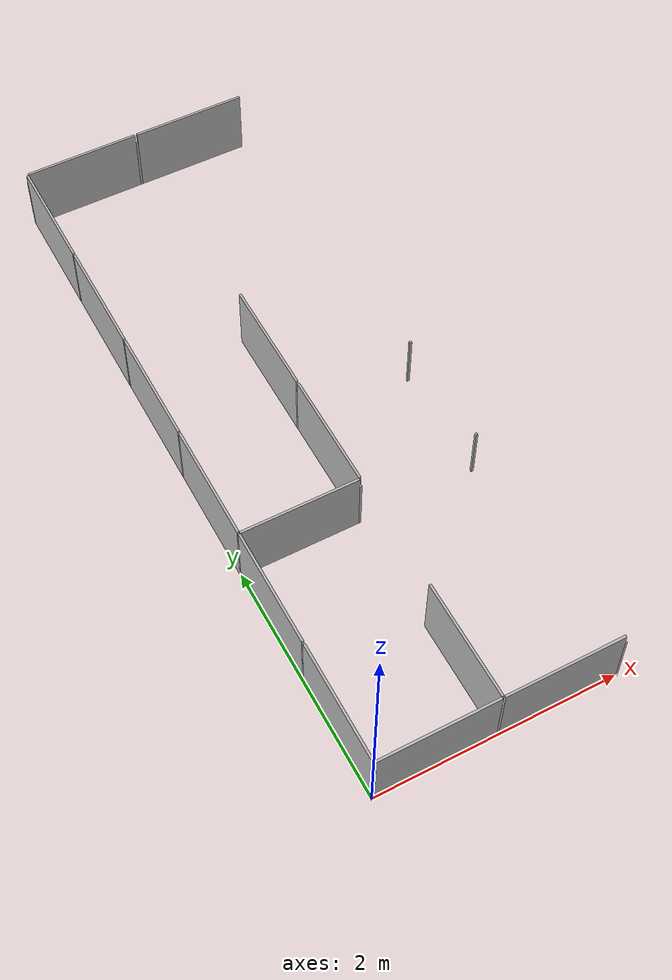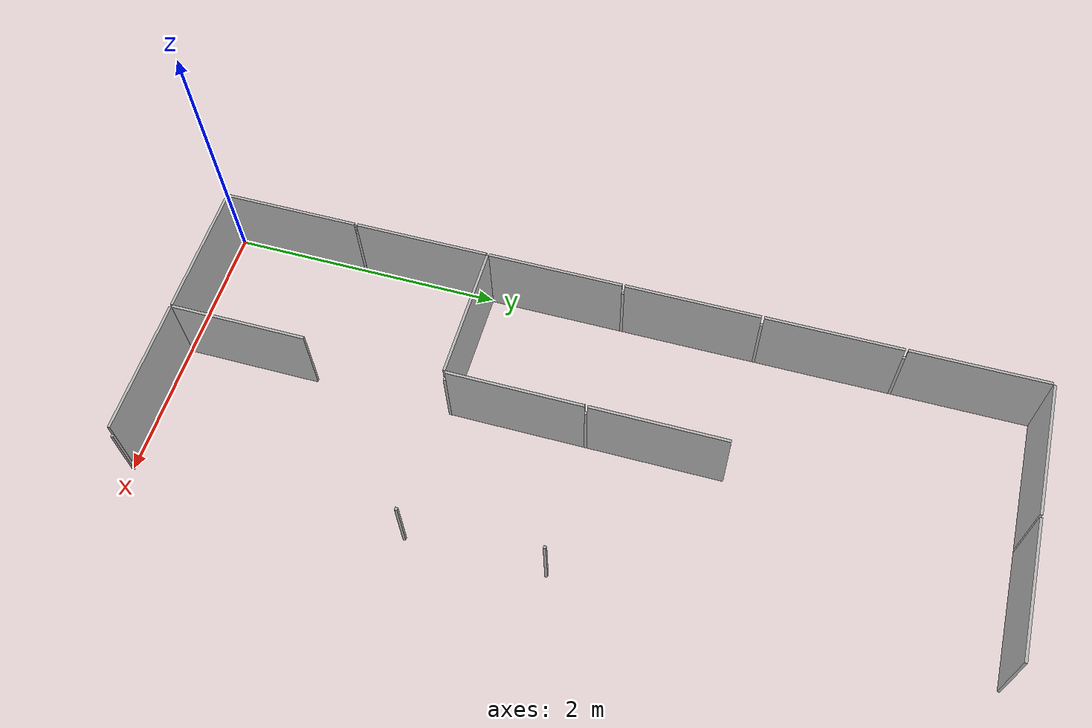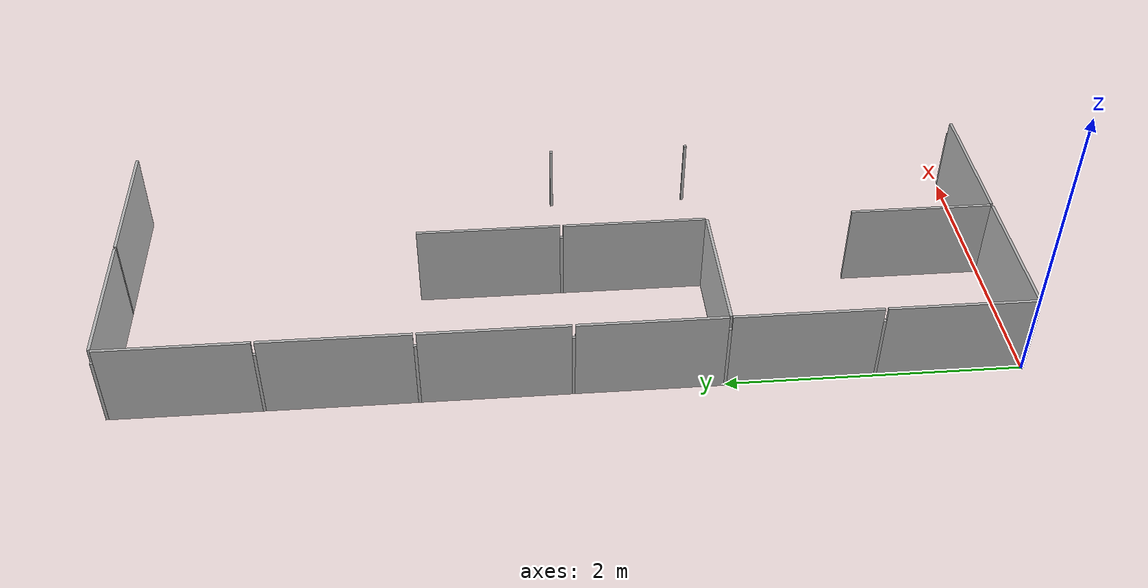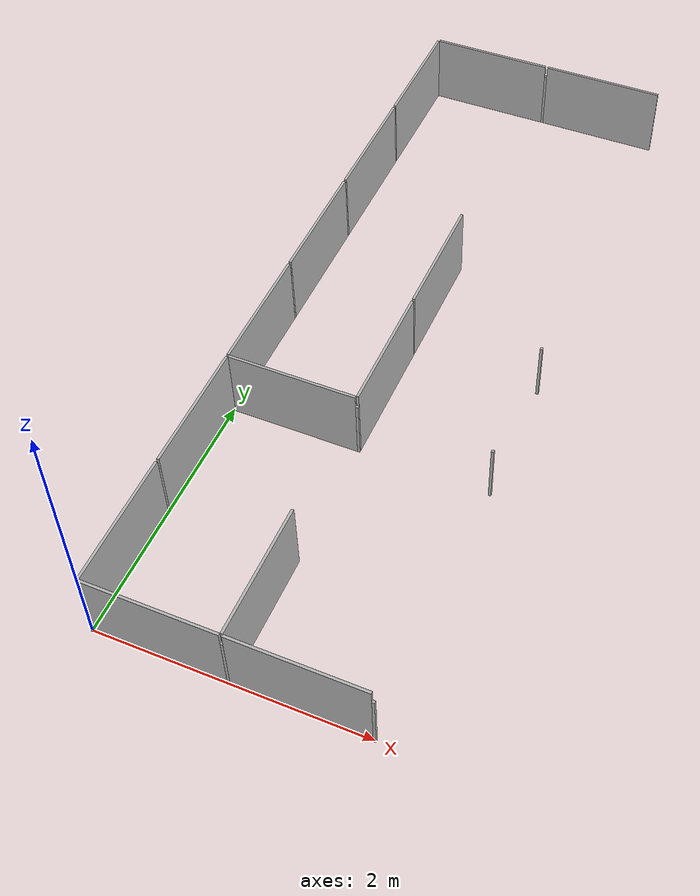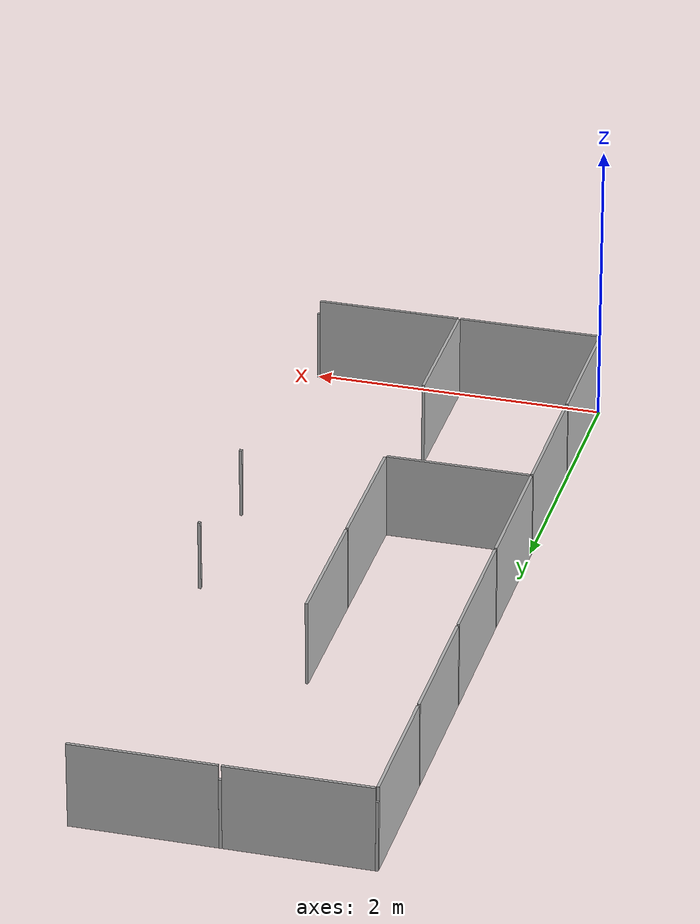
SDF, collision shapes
<sdf version="1.7">
 <model name="maze_midterm_validation">
  <link name="metal_plate_0_0_b::main">
   <pose>0 0 0 0 -0 1.571</pose>
   <visual name="visual">
    <pose>0.01 -0.01 0 3.14159 -1.57059 3.14159</pose>
    <geometry><mesh><scale>1 1 1</scale><uri>model://metal_plate/meshes/metal_plate.dae</uri></mesh></geometry>
    <material><shader type="pixel"/></material>
   </visual>
   <collision name="collision">
    <pose>0 -0.5 0.3 -1.571 -0 -1.571</pose>
    <geometry><box><size>0.98 0.6 0.02</size></box></geometry>
    <surface>
     <friction>
      <ode><mu>1</mu><mu2>1</mu2><fdir1>0 0 0</fdir1><slip1>0</slip1><slip2>0</slip2></ode>
      <torsional>
       <coefficient>1</coefficient>
       <patch_radius>0</patch_radius>
       <surface_radius>0</surface_radius>
       <use_patch_radius>1</use_patch_radius>
       <ode><slip>0</slip></ode>
      </torsional>
     </friction>
     <bounce><restitution_coefficient>0</restitution_coefficient><threshold>1e+06</threshold></bounce>
     <contact>
      <collide_without_contact>0</collide_without_contact>
      <collide_without_contact_bitmask>1</collide_without_contact_bitmask>
      <collide_bitmask>1</collide_bitmask>
      <ode>
       <soft_cfm>0</soft_cfm>
       <soft_erp>0.2</soft_erp>
       <kp>1e+13</kp>
       <kd>1</kd>
       <max_vel>0.01</max_vel>
       <min_depth>0</min_depth>
      </ode>
      <bullet>
       <split_impulse>1</split_impulse>
       <split_impulse_penetration_threshold>-0.01</split_impulse_penetration_threshold>
       <soft_cfm>0</soft_cfm>
       <soft_erp>0.2</soft_erp>
       <kp>1e+13</kp>
       <kd>1</kd>
      </bullet>
     </contact>
    </surface>
   </collision>
  </link>
  <link name="metal_joint_0_0_b::link">
   <pose>0 0 0.25 0 -0 0</pose>
   <visual name="visual_metal_joint_0">
    <geometry><box><size>0.02 0.02 0.5</size></box></geometry>
    <material>
     <script>
      <uri>model://metal_joint/materials/scripts</uri>
      <uri>model://metal_joint/materials/textures</uri>
      <name>metal_joint</name>
     </script>
     <shader type="pixel"/>
    </material>
   </visual>
   <collision name="metal_joint_01">
    <geometry><box><size>0.02 0.02 0.5</size></box></geometry>
    <surface>
     <friction>
      <ode><mu>1</mu><mu2>1</mu2><fdir1>0 0 0</fdir1><slip1>0</slip1><slip2>0</slip2></ode>
      <torsional>
       <coefficient>1</coefficient>
       <patch_radius>0</patch_radius>
       <surface_radius>0</surface_radius>
       <use_patch_radius>1</use_patch_radius>
       <ode><slip>0</slip></ode>
      </torsional>
     </friction>
     <bounce><restitution_coefficient>0</restitution_coefficient><threshold>1e+06</threshold></bounce>
     <contact>
      <collide_without_contact>0</collide_without_contact>
      <collide_without_contact_bitmask>1</collide_without_contact_bitmask>
      <collide_bitmask>1</collide_bitmask>
      <ode>
       <soft_cfm>0</soft_cfm>
       <soft_erp>0.2</soft_erp>
       <kp>1e+13</kp>
       <kd>1</kd>
       <max_vel>0.01</max_vel>
       <min_depth>0</min_depth>
      </ode>
      <bullet>
       <split_impulse>1</split_impulse>
       <split_impulse_penetration_threshold>-0.01</split_impulse_penetration_threshold>
       <soft_cfm>0</soft_cfm>
       <soft_erp>0.2</soft_erp>
       <kp>1e+13</kp>
       <kd>1</kd>
      </bullet>
     </contact>
    </surface>
   </collision>
  </link>
  <link name="metal_joint_0_1_a::link">
   <pose>0 1 0.25 0 -0 0</pose>
   <visual name="visual_metal_joint_0">
    <geometry><box><size>0.02 0.02 0.5</size></box></geometry>
    <material>
     <script>
      <uri>model://metal_joint/materials/scripts</uri>
      <uri>model://metal_joint/materials/textures</uri>
      <name>metal_joint</name>
     </script>
     <shader type="pixel"/>
    </material>
   </visual>
   <collision name="metal_joint_01">
    <geometry><box><size>0.02 0.02 0.5</size></box></geometry>
    <surface>
     <friction>
      <ode><mu>1</mu><mu2>1</mu2><fdir1>0 0 0</fdir1><slip1>0</slip1><slip2>0</slip2></ode>
      <torsional>
       <coefficient>1</coefficient>
       <patch_radius>0</patch_radius>
       <surface_radius>0</surface_radius>
       <use_patch_radius>1</use_patch_radius>
       <ode><slip>0</slip></ode>
      </torsional>
     </friction>
     <bounce><restitution_coefficient>0</restitution_coefficient><threshold>1e+06</threshold></bounce>
     <contact>
      <collide_without_contact>0</collide_without_contact>
      <collide_without_contact_bitmask>1</collide_without_contact_bitmask>
      <collide_bitmask>1</collide_bitmask>
      <ode>
       <soft_cfm>0</soft_cfm>
       <soft_erp>0.2</soft_erp>
       <kp>1e+13</kp>
       <kd>1</kd>
       <max_vel>0.01</max_vel>
       <min_depth>0</min_depth>
      </ode>
      <bullet>
       <split_impulse>1</split_impulse>
       <split_impulse_penetration_threshold>-0.01</split_impulse_penetration_threshold>
       <soft_cfm>0</soft_cfm>
       <soft_erp>0.2</soft_erp>
       <kp>1e+13</kp>
       <kd>1</kd>
      </bullet>
     </contact>
    </surface>
   </collision>
  </link>
  <link name="metal_joint_0_2_a::link">
   <pose>0 2 0.25 0 -0 0</pose>
   <visual name="visual_metal_joint_0">
    <geometry><box><size>0.02 0.02 0.5</size></box></geometry>
    <material>
     <script>
      <uri>model://metal_joint/materials/scripts</uri>
      <uri>model://metal_joint/materials/textures</uri>
      <name>metal_joint</name>
     </script>
     <shader type="pixel"/>
    </material>
   </visual>
   <collision name="metal_joint_01">
    <geometry><box><size>0.02 0.02 0.5</size></box></geometry>
    <surface>
     <friction>
      <ode><mu>1</mu><mu2>1</mu2><fdir1>0 0 0</fdir1><slip1>0</slip1><slip2>0</slip2></ode>
      <torsional>
       <coefficient>1</coefficient>
       <patch_radius>0</patch_radius>
       <surface_radius>0</surface_radius>
       <use_patch_radius>1</use_patch_radius>
       <ode><slip>0</slip></ode>
      </torsional>
     </friction>
     <bounce><restitution_coefficient>0</restitution_coefficient><threshold>1e+06</threshold></bounce>
     <contact>
      <collide_without_contact>0</collide_without_contact>
      <collide_without_contact_bitmask>1</collide_without_contact_bitmask>
      <collide_bitmask>1</collide_bitmask>
      <ode>
       <soft_cfm>0</soft_cfm>
       <soft_erp>0.2</soft_erp>
       <kp>1e+13</kp>
       <kd>1</kd>
       <max_vel>0.01</max_vel>
       <min_depth>0</min_depth>
      </ode>
      <bullet>
       <split_impulse>1</split_impulse>
       <split_impulse_penetration_threshold>-0.01</split_impulse_penetration_threshold>
       <soft_cfm>0</soft_cfm>
       <soft_erp>0.2</soft_erp>
       <kp>1e+13</kp>
       <kd>1</kd>
      </bullet>
     </contact>
    </surface>
   </collision>
  </link>
  <link name="metal_joint_0_3_a::link">
   <pose>0 3 0.25 0 -0 0</pose>
   <visual name="visual_metal_joint_0">
    <geometry><box><size>0.02 0.02 0.5</size></box></geometry>
    <material>
     <script>
      <uri>model://metal_joint/materials/scripts</uri>
      <uri>model://metal_joint/materials/textures</uri>
      <name>metal_joint</name>
     </script>
     <shader type="pixel"/>
    </material>
   </visual>
   <collision name="metal_joint_01">
    <geometry><box><size>0.02 0.02 0.5</size></box></geometry>
    <surface>
     <friction>
      <ode><mu>1</mu><mu2>1</mu2><fdir1>0 0 0</fdir1><slip1>0</slip1><slip2>0</slip2></ode>
      <torsional>
       <coefficient>1</coefficient>
       <patch_radius>0</patch_radius>
       <surface_radius>0</surface_radius>
       <use_patch_radius>1</use_patch_radius>
       <ode><slip>0</slip></ode>
      </torsional>
     </friction>
     <bounce><restitution_coefficient>0</restitution_coefficient><threshold>1e+06</threshold></bounce>
     <contact>
      <collide_without_contact>0</collide_without_contact>
      <collide_without_contact_bitmask>1</collide_without_contact_bitmask>
      <collide_bitmask>1</collide_bitmask>
      <ode>
       <soft_cfm>0</soft_cfm>
       <soft_erp>0.2</soft_erp>
       <kp>1e+13</kp>
       <kd>1</kd>
       <max_vel>0.01</max_vel>
       <min_depth>0</min_depth>
      </ode>
      <bullet>
       <split_impulse>1</split_impulse>
       <split_impulse_penetration_threshold>-0.01</split_impulse_penetration_threshold>
       <soft_cfm>0</soft_cfm>
       <soft_erp>0.2</soft_erp>
       <kp>1e+13</kp>
       <kd>1</kd>
      </bullet>
     </contact>
    </surface>
   </collision>
  </link>
  <link name="metal_joint_0_4_a::link">
   <pose>0 4 0.25 0 -0 0</pose>
   <visual name="visual_metal_joint_0">
    <geometry><box><size>0.02 0.02 0.5</size></box></geometry>
    <material>
     <script>
      <uri>model://metal_joint/materials/scripts</uri>
      <uri>model://metal_joint/materials/textures</uri>
      <name>metal_joint</name>
     </script>
     <shader type="pixel"/>
    </material>
   </visual>
   <collision name="metal_joint_01">
    <geometry><box><size>0.02 0.02 0.5</size></box></geometry>
    <surface>
     <friction>
      <ode><mu>1</mu><mu2>1</mu2><fdir1>0 0 0</fdir1><slip1>0</slip1><slip2>0</slip2></ode>
      <torsional>
       <coefficient>1</coefficient>
       <patch_radius>0</patch_radius>
       <surface_radius>0</surface_radius>
       <use_patch_radius>1</use_patch_radius>
       <ode><slip>0</slip></ode>
      </torsional>
     </friction>
     <bounce><restitution_coefficient>0</restitution_coefficient><threshold>1e+06</threshold></bounce>
     <contact>
      <collide_without_contact>0</collide_without_contact>
      <collide_without_contact_bitmask>1</collide_without_contact_bitmask>
      <collide_bitmask>1</collide_bitmask>
      <ode>
       <soft_cfm>0</soft_cfm>
       <soft_erp>0.2</soft_erp>
       <kp>1e+13</kp>
       <kd>1</kd>
       <max_vel>0.01</max_vel>
       <min_depth>0</min_depth>
      </ode>
      <bullet>
       <split_impulse>1</split_impulse>
       <split_impulse_penetration_threshold>-0.01</split_impulse_penetration_threshold>
       <soft_cfm>0</soft_cfm>
       <soft_erp>0.2</soft_erp>
       <kp>1e+13</kp>
       <kd>1</kd>
      </bullet>
     </contact>
    </surface>
   </collision>
  </link>
  <link name="metal_joint_0_5_a::link">
   <pose>0 5 0.25 0 -0 0</pose>
   <visual name="visual_metal_joint_0">
    <geometry><box><size>0.02 0.02 0.5</size></box></geometry>
    <material>
     <script>
      <uri>model://metal_joint/materials/scripts</uri>
      <uri>model://metal_joint/materials/textures</uri>
      <name>metal_joint</name>
     </script>
     <shader type="pixel"/>
    </material>
   </visual>
   <collision name="metal_joint_01">
    <geometry><box><size>0.02 0.02 0.5</size></box></geometry>
    <surface>
     <friction>
      <ode><mu>1</mu><mu2>1</mu2><fdir1>0 0 0</fdir1><slip1>0</slip1><slip2>0</slip2></ode>
      <torsional>
       <coefficient>1</coefficient>
       <patch_radius>0</patch_radius>
       <surface_radius>0</surface_radius>
       <use_patch_radius>1</use_patch_radius>
       <ode><slip>0</slip></ode>
      </torsional>
     </friction>
     <bounce><restitution_coefficient>0</restitution_coefficient><threshold>1e+06</threshold></bounce>
     <contact>
      <collide_without_contact>0</collide_without_contact>
      <collide_without_contact_bitmask>1</collide_without_contact_bitmask>
      <collide_bitmask>1</collide_bitmask>
      <ode>
       <soft_cfm>0</soft_cfm>
       <soft_erp>0.2</soft_erp>
       <kp>1e+13</kp>
       <kd>1</kd>
       <max_vel>0.01</max_vel>
       <min_depth>0</min_depth>
      </ode>
      <bullet>
       <split_impulse>1</split_impulse>
       <split_impulse_penetration_threshold>-0.01</split_impulse_penetration_threshold>
       <soft_cfm>0</soft_cfm>
       <soft_erp>0.2</soft_erp>
       <kp>1e+13</kp>
       <kd>1</kd>
      </bullet>
     </contact>
    </surface>
   </collision>
  </link>
  <link name="metal_joint_0_6_b::link">
   <pose>0 6 0.25 0 -0 0</pose>
   <visual name="visual_metal_joint_0">
    <geometry><box><size>0.02 0.02 0.5</size></box></geometry>
    <material>
     <script>
      <uri>model://metal_joint/materials/scripts</uri>
      <uri>model://metal_joint/materials/textures</uri>
      <name>metal_joint</name>
     </script>
     <shader type="pixel"/>
    </material>
   </visual>
   <collision name="metal_joint_01">
    <geometry><box><size>0.02 0.02 0.5</size></box></geometry>
    <surface>
     <friction>
      <ode><mu>1</mu><mu2>1</mu2><fdir1>0 0 0</fdir1><slip1>0</slip1><slip2>0</slip2></ode>
      <torsional>
       <coefficient>1</coefficient>
       <patch_radius>0</patch_radius>
       <surface_radius>0</surface_radius>
       <use_patch_radius>1</use_patch_radius>
       <ode><slip>0</slip></ode>
      </torsional>
     </friction>
     <bounce><restitution_coefficient>0</restitution_coefficient><threshold>1e+06</threshold></bounce>
     <contact>
      <collide_without_contact>0</collide_without_contact>
      <collide_without_contact_bitmask>1</collide_without_contact_bitmask>
      <collide_bitmask>1</collide_bitmask>
      <ode>
       <soft_cfm>0</soft_cfm>
       <soft_erp>0.2</soft_erp>
       <kp>1e+13</kp>
       <kd>1</kd>
       <max_vel>0.01</max_vel>
       <min_depth>0</min_depth>
      </ode>
      <bullet>
       <split_impulse>1</split_impulse>
       <split_impulse_penetration_threshold>-0.01</split_impulse_penetration_threshold>
       <soft_cfm>0</soft_cfm>
       <soft_erp>0.2</soft_erp>
       <kp>1e+13</kp>
       <kd>1</kd>
      </bullet>
     </contact>
    </surface>
   </collision>
  </link>
  <link name="metal_joint_1_0_b::link">
   <pose>1 0 0.25 0 -0 0</pose>
   <visual name="visual_metal_joint_0">
    <geometry><box><size>0.02 0.02 0.5</size></box></geometry>
    <material>
     <script>
      <uri>model://metal_joint/materials/scripts</uri>
      <uri>model://metal_joint/materials/textures</uri>
      <name>metal_joint</name>
     </script>
     <shader type="pixel"/>
    </material>
   </visual>
   <collision name="metal_joint_01">
    <geometry><box><size>0.02 0.02 0.5</size></box></geometry>
    <surface>
     <friction>
      <ode><mu>1</mu><mu2>1</mu2><fdir1>0 0 0</fdir1><slip1>0</slip1><slip2>0</slip2></ode>
      <torsional>
       <coefficient>1</coefficient>
       <patch_radius>0</patch_radius>
       <surface_radius>0</surface_radius>
       <use_patch_radius>1</use_patch_radius>
       <ode><slip>0</slip></ode>
      </torsional>
     </friction>
     <bounce><restitution_coefficient>0</restitution_coefficient><threshold>1e+06</threshold></bounce>
     <contact>
      <collide_without_contact>0</collide_without_contact>
      <collide_without_contact_bitmask>1</collide_without_contact_bitmask>
      <collide_bitmask>1</collide_bitmask>
      <ode>
       <soft_cfm>0</soft_cfm>
       <soft_erp>0.2</soft_erp>
       <kp>1e+13</kp>
       <kd>1</kd>
       <max_vel>0.01</max_vel>
       <min_depth>0</min_depth>
      </ode>
      <bullet>
       <split_impulse>1</split_impulse>
       <split_impulse_penetration_threshold>-0.01</split_impulse_penetration_threshold>
       <soft_cfm>0</soft_cfm>
       <soft_erp>0.2</soft_erp>
       <kp>1e+13</kp>
       <kd>1</kd>
      </bullet>
     </contact>
    </surface>
   </collision>
  </link>
  <link name="metal_joint_1_2::link">
   <pose>1 2 0.25 0 -0 0</pose>
   <visual name="visual_metal_joint_0">
    <geometry><box><size>0.02 0.02 0.5</size></box></geometry>
    <material>
     <script>
      <uri>model://metal_joint/materials/scripts</uri>
      <uri>model://metal_joint/materials/textures</uri>
      <name>metal_joint</name>
     </script>
     <shader type="pixel"/>
    </material>
   </visual>
   <collision name="metal_joint_01">
    <geometry><box><size>0.02 0.02 0.5</size></box></geometry>
    <surface>
     <friction>
      <ode><mu>1</mu><mu2>1</mu2><fdir1>0 0 0</fdir1><slip1>0</slip1><slip2>0</slip2></ode>
      <torsional>
       <coefficient>1</coefficient>
       <patch_radius>0</patch_radius>
       <surface_radius>0</surface_radius>
       <use_patch_radius>1</use_patch_radius>
       <ode><slip>0</slip></ode>
      </torsional>
     </friction>
     <bounce><restitution_coefficient>0</restitution_coefficient><threshold>1e+06</threshold></bounce>
     <contact>
      <collide_without_contact>0</collide_without_contact>
      <collide_without_contact_bitmask>1</collide_without_contact_bitmask>
      <collide_bitmask>1</collide_bitmask>
      <ode>
       <soft_cfm>0</soft_cfm>
       <soft_erp>0.2</soft_erp>
       <kp>1e+13</kp>
       <kd>1</kd>
       <max_vel>0.01</max_vel>
       <min_depth>0</min_depth>
      </ode>
      <bullet>
       <split_impulse>1</split_impulse>
       <split_impulse_penetration_threshold>-0.01</split_impulse_penetration_threshold>
       <soft_cfm>0</soft_cfm>
       <soft_erp>0.2</soft_erp>
       <kp>1e+13</kp>
       <kd>1</kd>
      </bullet>
     </contact>
    </surface>
   </collision>
  </link>
  <link name="metal_joint_1_3::link">
   <pose>1 3 0.25 0 -0 0</pose>
   <visual name="visual_metal_joint_0">
    <geometry><box><size>0.02 0.02 0.5</size></box></geometry>
    <material>
     <script>
      <uri>model://metal_joint/materials/scripts</uri>
      <uri>model://metal_joint/materials/textures</uri>
      <name>metal_joint</name>
     </script>
     <shader type="pixel"/>
    </material>
   </visual>
   <collision name="metal_joint_01">
    <geometry><box><size>0.02 0.02 0.5</size></box></geometry>
    <surface>
     <friction>
      <ode><mu>1</mu><mu2>1</mu2><fdir1>0 0 0</fdir1><slip1>0</slip1><slip2>0</slip2></ode>
      <torsional>
       <coefficient>1</coefficient>
       <patch_radius>0</patch_radius>
       <surface_radius>0</surface_radius>
       <use_patch_radius>1</use_patch_radius>
       <ode><slip>0</slip></ode>
      </torsional>
     </friction>
     <bounce><restitution_coefficient>0</restitution_coefficient><threshold>1e+06</threshold></bounce>
     <contact>
      <collide_without_contact>0</collide_without_contact>
      <collide_without_contact_bitmask>1</collide_without_contact_bitmask>
      <collide_bitmask>1</collide_bitmask>
      <ode>
       <soft_cfm>0</soft_cfm>
       <soft_erp>0.2</soft_erp>
       <kp>1e+13</kp>
       <kd>1</kd>
       <max_vel>0.01</max_vel>
       <min_depth>0</min_depth>
      </ode>
      <bullet>
       <split_impulse>1</split_impulse>
       <split_impulse_penetration_threshold>-0.01</split_impulse_penetration_threshold>
       <soft_cfm>0</soft_cfm>
       <soft_erp>0.2</soft_erp>
       <kp>1e+13</kp>
       <kd>1</kd>
      </bullet>
     </contact>
    </surface>
   </collision>
  </link>
  <link name="metal_joint_1_6_b::link">
   <pose>1 6 0.25 0 -0 0</pose>
   <visual name="visual_metal_joint_0">
    <geometry><box><size>0.02 0.02 0.5</size></box></geometry>
    <material>
     <script>
      <uri>model://metal_joint/materials/scripts</uri>
      <uri>model://metal_joint/materials/textures</uri>
      <name>metal_joint</name>
     </script>
     <shader type="pixel"/>
    </material>
   </visual>
   <collision name="metal_joint_01">
    <geometry><box><size>0.02 0.02 0.5</size></box></geometry>
    <surface>
     <friction>
      <ode><mu>1</mu><mu2>1</mu2><fdir1>0 0 0</fdir1><slip1>0</slip1><slip2>0</slip2></ode>
      <torsional>
       <coefficient>1</coefficient>
       <patch_radius>0</patch_radius>
       <surface_radius>0</surface_radius>
       <use_patch_radius>1</use_patch_radius>
       <ode><slip>0</slip></ode>
      </torsional>
     </friction>
     <bounce><restitution_coefficient>0</restitution_coefficient><threshold>1e+06</threshold></bounce>
     <contact>
      <collide_without_contact>0</collide_without_contact>
      <collide_without_contact_bitmask>1</collide_without_contact_bitmask>
      <collide_bitmask>1</collide_bitmask>
      <ode>
       <soft_cfm>0</soft_cfm>
       <soft_erp>0.2</soft_erp>
       <kp>1e+13</kp>
       <kd>1</kd>
       <max_vel>0.01</max_vel>
       <min_depth>0</min_depth>
      </ode>
      <bullet>
       <split_impulse>1</split_impulse>
       <split_impulse_penetration_threshold>-0.01</split_impulse_penetration_threshold>
       <soft_cfm>0</soft_cfm>
       <soft_erp>0.2</soft_erp>
       <kp>1e+13</kp>
       <kd>1</kd>
      </bullet>
     </contact>
    </surface>
   </collision>
  </link>
  <link name="metal_joint_2_0_b::link">
   <pose>2 0 0.25 0 -0 0</pose>
   <visual name="visual_metal_joint_0">
    <geometry><box><size>0.02 0.02 0.5</size></box></geometry>
    <material>
     <script>
      <uri>model://metal_joint/materials/scripts</uri>
      <uri>model://metal_joint/materials/textures</uri>
      <name>metal_joint</name>
     </script>
     <shader type="pixel"/>
    </material>
   </visual>
   <collision name="metal_joint_01">
    <geometry><box><size>0.02 0.02 0.5</size></box></geometry>
    <surface>
     <friction>
      <ode><mu>1</mu><mu2>1</mu2><fdir1>0 0 0</fdir1><slip1>0</slip1><slip2>0</slip2></ode>
      <torsional>
       <coefficient>1</coefficient>
       <patch_radius>0</patch_radius>
       <surface_radius>0</surface_radius>
       <use_patch_radius>1</use_patch_radius>
       <ode><slip>0</slip></ode>
      </torsional>
     </friction>
     <bounce><restitution_coefficient>0</restitution_coefficient><threshold>1e+06</threshold></bounce>
     <contact>
      <collide_without_contact>0</collide_without_contact>
      <collide_without_contact_bitmask>1</collide_without_contact_bitmask>
      <collide_bitmask>1</collide_bitmask>
      <ode>
       <soft_cfm>0</soft_cfm>
       <soft_erp>0.2</soft_erp>
       <kp>1e+13</kp>
       <kd>1</kd>
       <max_vel>0.01</max_vel>
       <min_depth>0</min_depth>
      </ode>
      <bullet>
       <split_impulse>1</split_impulse>
       <split_impulse_penetration_threshold>-0.01</split_impulse_penetration_threshold>
       <soft_cfm>0</soft_cfm>
       <soft_erp>0.2</soft_erp>
       <kp>1e+13</kp>
       <kd>1</kd>
      </bullet>
     </contact>
    </surface>
   </collision>
  </link>
  <link name="metal_joint_2_2::link">
   <pose>2 2 0.25 0 -0 0</pose>
   <visual name="visual_metal_joint_0">
    <geometry><box><size>0.02 0.02 0.5</size></box></geometry>
    <material>
     <script>
      <uri>model://metal_joint/materials/scripts</uri>
      <uri>model://metal_joint/materials/textures</uri>
      <name>metal_joint</name>
     </script>
     <shader type="pixel"/>
    </material>
   </visual>
   <collision name="metal_joint_01">
    <geometry><box><size>0.02 0.02 0.5</size></box></geometry>
    <surface>
     <friction>
      <ode><mu>1</mu><mu2>1</mu2><fdir1>0 0 0</fdir1><slip1>0</slip1><slip2>0</slip2></ode>
      <torsional>
       <coefficient>1</coefficient>
       <patch_radius>0</patch_radius>
       <surface_radius>0</surface_radius>
       <use_patch_radius>1</use_patch_radius>
       <ode><slip>0</slip></ode>
      </torsional>
     </friction>
     <bounce><restitution_coefficient>0</restitution_coefficient><threshold>1e+06</threshold></bounce>
     <contact>
      <collide_without_contact>0</collide_without_contact>
      <collide_without_contact_bitmask>1</collide_without_contact_bitmask>
      <collide_bitmask>1</collide_bitmask>
      <ode>
       <soft_cfm>0</soft_cfm>
       <soft_erp>0.2</soft_erp>
       <kp>1e+13</kp>
       <kd>1</kd>
       <max_vel>0.01</max_vel>
       <min_depth>0</min_depth>
      </ode>
      <bullet>
       <split_impulse>1</split_impulse>
       <split_impulse_penetration_threshold>-0.01</split_impulse_penetration_threshold>
       <soft_cfm>0</soft_cfm>
       <soft_erp>0.2</soft_erp>
       <kp>1e+13</kp>
       <kd>1</kd>
      </bullet>
     </contact>
    </surface>
   </collision>
  </link>
  <link name="metal_joint_2_3::link">
   <pose>2 3 0.25 0 -0 0</pose>
   <visual name="visual_metal_joint_0">
    <geometry><box><size>0.02 0.02 0.5</size></box></geometry>
    <material>
     <script>
      <uri>model://metal_joint/materials/scripts</uri>
      <uri>model://metal_joint/materials/textures</uri>
      <name>metal_joint</name>
     </script>
     <shader type="pixel"/>
    </material>
   </visual>
   <collision name="metal_joint_01">
    <geometry><box><size>0.02 0.02 0.5</size></box></geometry>
    <surface>
     <friction>
      <ode><mu>1</mu><mu2>1</mu2><fdir1>0 0 0</fdir1><slip1>0</slip1><slip2>0</slip2></ode>
      <torsional>
       <coefficient>1</coefficient>
       <patch_radius>0</patch_radius>
       <surface_radius>0</surface_radius>
       <use_patch_radius>1</use_patch_radius>
       <ode><slip>0</slip></ode>
      </torsional>
     </friction>
     <bounce><restitution_coefficient>0</restitution_coefficient><threshold>1e+06</threshold></bounce>
     <contact>
      <collide_without_contact>0</collide_without_contact>
      <collide_without_contact_bitmask>1</collide_without_contact_bitmask>
      <collide_bitmask>1</collide_bitmask>
      <ode>
       <soft_cfm>0</soft_cfm>
       <soft_erp>0.2</soft_erp>
       <kp>1e+13</kp>
       <kd>1</kd>
       <max_vel>0.01</max_vel>
       <min_depth>0</min_depth>
      </ode>
      <bullet>
       <split_impulse>1</split_impulse>
       <split_impulse_penetration_threshold>-0.01</split_impulse_penetration_threshold>
       <soft_cfm>0</soft_cfm>
       <soft_erp>0.2</soft_erp>
       <kp>1e+13</kp>
       <kd>1</kd>
      </bullet>
     </contact>
    </surface>
   </collision>
  </link>
  <link name="metal_plate_0_0_a::main">
   <pose>0 0 0 0 -0 3.14159</pose>
   <visual name="visual">
    <pose>0.01 -0.01 0 3.14159 -1.57059 3.14159</pose>
    <geometry><mesh><scale>1 1 1</scale><uri>model://metal_plate/meshes/metal_plate.dae</uri></mesh></geometry>
    <material><shader type="pixel"/></material>
   </visual>
   <collision name="collision">
    <pose>0 -0.5 0.3 -1.571 -0 -1.571</pose>
    <geometry><box><size>0.98 0.6 0.02</size></box></geometry>
    <surface>
     <friction>
      <ode><mu>1</mu><mu2>1</mu2><fdir1>0 0 0</fdir1><slip1>0</slip1><slip2>0</slip2></ode>
      <torsional>
       <coefficient>1</coefficient>
       <patch_radius>0</patch_radius>
       <surface_radius>0</surface_radius>
       <use_patch_radius>1</use_patch_radius>
       <ode><slip>0</slip></ode>
      </torsional>
     </friction>
     <bounce><restitution_coefficient>0</restitution_coefficient><threshold>1e+06</threshold></bounce>
     <contact>
      <collide_without_contact>0</collide_without_contact>
      <collide_without_contact_bitmask>1</collide_without_contact_bitmask>
      <collide_bitmask>1</collide_bitmask>
      <ode>
       <soft_cfm>0</soft_cfm>
       <soft_erp>0.2</soft_erp>
       <kp>1e+13</kp>
       <kd>1</kd>
       <max_vel>0.01</max_vel>
       <min_depth>0</min_depth>
      </ode>
      <bullet>
       <split_impulse>1</split_impulse>
       <split_impulse_penetration_threshold>-0.01</split_impulse_penetration_threshold>
       <soft_cfm>0</soft_cfm>
       <soft_erp>0.2</soft_erp>
       <kp>1e+13</kp>
       <kd>1</kd>
      </bullet>
     </contact>
    </surface>
   </collision>
  </link>
  <link name="metal_plate_0_1_a::main">
   <pose>0 1 0 0 -0 3.14159</pose>
   <visual name="visual">
    <pose>0.01 -0.01 0 3.14159 -1.57059 3.14159</pose>
    <geometry><mesh><scale>1 1 1</scale><uri>model://metal_plate/meshes/metal_plate.dae</uri></mesh></geometry>
    <material><shader type="pixel"/></material>
   </visual>
   <collision name="collision">
    <pose>0 -0.5 0.3 -1.571 -0 -1.571</pose>
    <geometry><box><size>0.98 0.6 0.02</size></box></geometry>
    <surface>
     <friction>
      <ode><mu>1</mu><mu2>1</mu2><fdir1>0 0 0</fdir1><slip1>0</slip1><slip2>0</slip2></ode>
      <torsional>
       <coefficient>1</coefficient>
       <patch_radius>0</patch_radius>
       <surface_radius>0</surface_radius>
       <use_patch_radius>1</use_patch_radius>
       <ode><slip>0</slip></ode>
      </torsional>
     </friction>
     <bounce><restitution_coefficient>0</restitution_coefficient><threshold>1e+06</threshold></bounce>
     <contact>
      <collide_without_contact>0</collide_without_contact>
      <collide_without_contact_bitmask>1</collide_without_contact_bitmask>
      <collide_bitmask>1</collide_bitmask>
      <ode>
       <soft_cfm>0</soft_cfm>
       <soft_erp>0.2</soft_erp>
       <kp>1e+13</kp>
       <kd>1</kd>
       <max_vel>0.01</max_vel>
       <min_depth>0</min_depth>
      </ode>
      <bullet>
       <split_impulse>1</split_impulse>
       <split_impulse_penetration_threshold>-0.01</split_impulse_penetration_threshold>
       <soft_cfm>0</soft_cfm>
       <soft_erp>0.2</soft_erp>
       <kp>1e+13</kp>
       <kd>1</kd>
      </bullet>
     </contact>
    </surface>
   </collision>
  </link>
  <link name="metal_plate_0_2_a::main">
   <pose>0 2 0 0 -0 3.14159</pose>
   <visual name="visual">
    <pose>0.01 -0.01 0 3.14159 -1.57059 3.14159</pose>
    <geometry><mesh><scale>1 1 1</scale><uri>model://metal_plate/meshes/metal_plate.dae</uri></mesh></geometry>
    <material><shader type="pixel"/></material>
   </visual>
   <collision name="collision">
    <pose>0 -0.5 0.3 -1.571 -0 -1.571</pose>
    <geometry><box><size>0.98 0.6 0.02</size></box></geometry>
    <surface>
     <friction>
      <ode><mu>1</mu><mu2>1</mu2><fdir1>0 0 0</fdir1><slip1>0</slip1><slip2>0</slip2></ode>
      <torsional>
       <coefficient>1</coefficient>
       <patch_radius>0</patch_radius>
       <surface_radius>0</surface_radius>
       <use_patch_radius>1</use_patch_radius>
       <ode><slip>0</slip></ode>
      </torsional>
     </friction>
     <bounce><restitution_coefficient>0</restitution_coefficient><threshold>1e+06</threshold></bounce>
     <contact>
      <collide_without_contact>0</collide_without_contact>
      <collide_without_contact_bitmask>1</collide_without_contact_bitmask>
      <collide_bitmask>1</collide_bitmask>
      <ode>
       <soft_cfm>0</soft_cfm>
       <soft_erp>0.2</soft_erp>
       <kp>1e+13</kp>
       <kd>1</kd>
       <max_vel>0.01</max_vel>
       <min_depth>0</min_depth>
      </ode>
      <bullet>
       <split_impulse>1</split_impulse>
       <split_impulse_penetration_threshold>-0.01</split_impulse_penetration_threshold>
       <soft_cfm>0</soft_cfm>
       <soft_erp>0.2</soft_erp>
       <kp>1e+13</kp>
       <kd>1</kd>
      </bullet>
     </contact>
    </surface>
   </collision>
  </link>
  <link name="metal_plate_0_3_a::main">
   <pose>0 3 0 0 -0 3.14159</pose>
   <visual name="visual">
    <pose>0.01 -0.01 0 3.14159 -1.57059 3.14159</pose>
    <geometry><mesh><scale>1 1 1</scale><uri>model://metal_plate/meshes/metal_plate.dae</uri></mesh></geometry>
    <material><shader type="pixel"/></material>
   </visual>
   <collision name="collision">
    <pose>0 -0.5 0.3 -1.571 -0 -1.571</pose>
    <geometry><box><size>0.98 0.6 0.02</size></box></geometry>
    <surface>
     <friction>
      <ode><mu>1</mu><mu2>1</mu2><fdir1>0 0 0</fdir1><slip1>0</slip1><slip2>0</slip2></ode>
      <torsional>
       <coefficient>1</coefficient>
       <patch_radius>0</patch_radius>
       <surface_radius>0</surface_radius>
       <use_patch_radius>1</use_patch_radius>
       <ode><slip>0</slip></ode>
      </torsional>
     </friction>
     <bounce><restitution_coefficient>0</restitution_coefficient><threshold>1e+06</threshold></bounce>
     <contact>
      <collide_without_contact>0</collide_without_contact>
      <collide_without_contact_bitmask>1</collide_without_contact_bitmask>
      <collide_bitmask>1</collide_bitmask>
      <ode>
       <soft_cfm>0</soft_cfm>
       <soft_erp>0.2</soft_erp>
       <kp>1e+13</kp>
       <kd>1</kd>
       <max_vel>0.01</max_vel>
       <min_depth>0</min_depth>
      </ode>
      <bullet>
       <split_impulse>1</split_impulse>
       <split_impulse_penetration_threshold>-0.01</split_impulse_penetration_threshold>
       <soft_cfm>0</soft_cfm>
       <soft_erp>0.2</soft_erp>
       <kp>1e+13</kp>
       <kd>1</kd>
      </bullet>
     </contact>
    </surface>
   </collision>
  </link>
  <link name="metal_plate_0_4_a::main">
   <pose>0 4 0 0 -0 3.14159</pose>
   <visual name="visual">
    <pose>0.01 -0.01 0 3.14159 -1.57059 3.14159</pose>
    <geometry><mesh><scale>1 1 1</scale><uri>model://metal_plate/meshes/metal_plate.dae</uri></mesh></geometry>
    <material><shader type="pixel"/></material>
   </visual>
   <collision name="collision">
    <pose>0 -0.5 0.3 -1.571 -0 -1.571</pose>
    <geometry><box><size>0.98 0.6 0.02</size></box></geometry>
    <surface>
     <friction>
      <ode><mu>1</mu><mu2>1</mu2><fdir1>0 0 0</fdir1><slip1>0</slip1><slip2>0</slip2></ode>
      <torsional>
       <coefficient>1</coefficient>
       <patch_radius>0</patch_radius>
       <surface_radius>0</surface_radius>
       <use_patch_radius>1</use_patch_radius>
       <ode><slip>0</slip></ode>
      </torsional>
     </friction>
     <bounce><restitution_coefficient>0</restitution_coefficient><threshold>1e+06</threshold></bounce>
     <contact>
      <collide_without_contact>0</collide_without_contact>
      <collide_without_contact_bitmask>1</collide_without_contact_bitmask>
      <collide_bitmask>1</collide_bitmask>
      <ode>
       <soft_cfm>0</soft_cfm>
       <soft_erp>0.2</soft_erp>
       <kp>1e+13</kp>
       <kd>1</kd>
       <max_vel>0.01</max_vel>
       <min_depth>0</min_depth>
      </ode>
      <bullet>
       <split_impulse>1</split_impulse>
       <split_impulse_penetration_threshold>-0.01</split_impulse_penetration_threshold>
       <soft_cfm>0</soft_cfm>
       <soft_erp>0.2</soft_erp>
       <kp>1e+13</kp>
       <kd>1</kd>
      </bullet>
     </contact>
    </surface>
   </collision>
  </link>
  <link name="metal_plate_0_5_a::main">
   <pose>0 5 0 0 -0 3.14159</pose>
   <visual name="visual">
    <pose>0.01 -0.01 0 3.14159 -1.57059 3.14159</pose>
    <geometry><mesh><scale>1 1 1</scale><uri>model://metal_plate/meshes/metal_plate.dae</uri></mesh></geometry>
    <material><shader type="pixel"/></material>
   </visual>
   <collision name="collision">
    <pose>0 -0.5 0.3 -1.571 -0 -1.571</pose>
    <geometry><box><size>0.98 0.6 0.02</size></box></geometry>
    <surface>
     <friction>
      <ode><mu>1</mu><mu2>1</mu2><fdir1>0 0 0</fdir1><slip1>0</slip1><slip2>0</slip2></ode>
      <torsional>
       <coefficient>1</coefficient>
       <patch_radius>0</patch_radius>
       <surface_radius>0</surface_radius>
       <use_patch_radius>1</use_patch_radius>
       <ode><slip>0</slip></ode>
      </torsional>
     </friction>
     <bounce><restitution_coefficient>0</restitution_coefficient><threshold>1e+06</threshold></bounce>
     <contact>
      <collide_without_contact>0</collide_without_contact>
      <collide_without_contact_bitmask>1</collide_without_contact_bitmask>
      <collide_bitmask>1</collide_bitmask>
      <ode>
       <soft_cfm>0</soft_cfm>
       <soft_erp>0.2</soft_erp>
       <kp>1e+13</kp>
       <kd>1</kd>
       <max_vel>0.01</max_vel>
       <min_depth>0</min_depth>
      </ode>
      <bullet>
       <split_impulse>1</split_impulse>
       <split_impulse_penetration_threshold>-0.01</split_impulse_penetration_threshold>
       <soft_cfm>0</soft_cfm>
       <soft_erp>0.2</soft_erp>
       <kp>1e+13</kp>
       <kd>1</kd>
      </bullet>
     </contact>
    </surface>
   </collision>
  </link>
  <link name="metal_plate_0_6_b::main">
   <pose>0 6 0 0 -0 1.571</pose>
   <visual name="visual">
    <pose>0.01 -0.01 0 3.14159 -1.57059 3.14159</pose>
    <geometry><mesh><scale>1 1 1</scale><uri>model://metal_plate/meshes/metal_plate.dae</uri></mesh></geometry>
    <material><shader type="pixel"/></material>
   </visual>
   <collision name="collision">
    <pose>0 -0.5 0.3 -1.571 -0 -1.571</pose>
    <geometry><box><size>0.98 0.6 0.02</size></box></geometry>
    <surface>
     <friction>
      <ode><mu>1</mu><mu2>1</mu2><fdir1>0 0 0</fdir1><slip1>0</slip1><slip2>0</slip2></ode>
      <torsional>
       <coefficient>1</coefficient>
       <patch_radius>0</patch_radius>
       <surface_radius>0</surface_radius>
       <use_patch_radius>1</use_patch_radius>
       <ode><slip>0</slip></ode>
      </torsional>
     </friction>
     <bounce><restitution_coefficient>0</restitution_coefficient><threshold>1e+06</threshold></bounce>
     <contact>
      <collide_without_contact>0</collide_without_contact>
      <collide_without_contact_bitmask>1</collide_without_contact_bitmask>
      <collide_bitmask>1</collide_bitmask>
      <ode>
       <soft_cfm>0</soft_cfm>
       <soft_erp>0.2</soft_erp>
       <kp>1e+13</kp>
       <kd>1</kd>
       <max_vel>0.01</max_vel>
       <min_depth>0</min_depth>
      </ode>
      <bullet>
       <split_impulse>1</split_impulse>
       <split_impulse_penetration_threshold>-0.01</split_impulse_penetration_threshold>
       <soft_cfm>0</soft_cfm>
       <soft_erp>0.2</soft_erp>
       <kp>1e+13</kp>
       <kd>1</kd>
      </bullet>
     </contact>
    </surface>
   </collision>
  </link>
  <link name="metal_plate_1_0_b::main">
   <pose>1 0 0 0 -0 1.571</pose>
   <visual name="visual">
    <pose>0.01 -0.01 0 3.14159 -1.57059 3.14159</pose>
    <geometry><mesh><scale>1 1 1</scale><uri>model://metal_plate/meshes/metal_plate.dae</uri></mesh></geometry>
    <material><shader type="pixel"/></material>
   </visual>
   <collision name="collision">
    <pose>0 -0.5 0.3 -1.571 -0 -1.571</pose>
    <geometry><box><size>0.98 0.6 0.02</size></box></geometry>
    <surface>
     <friction>
      <ode><mu>1</mu><mu2>1</mu2><fdir1>0 0 0</fdir1><slip1>0</slip1><slip2>0</slip2></ode>
      <torsional>
       <coefficient>1</coefficient>
       <patch_radius>0</patch_radius>
       <surface_radius>0</surface_radius>
       <use_patch_radius>1</use_patch_radius>
       <ode><slip>0</slip></ode>
      </torsional>
     </friction>
     <bounce><restitution_coefficient>0</restitution_coefficient><threshold>1e+06</threshold></bounce>
     <contact>
      <collide_without_contact>0</collide_without_contact>
      <collide_without_contact_bitmask>1</collide_without_contact_bitmask>
      <collide_bitmask>1</collide_bitmask>
      <ode>
       <soft_cfm>0</soft_cfm>
       <soft_erp>0.2</soft_erp>
       <kp>1e+13</kp>
       <kd>1</kd>
       <max_vel>0.01</max_vel>
       <min_depth>0</min_depth>
      </ode>
      <bullet>
       <split_impulse>1</split_impulse>
       <split_impulse_penetration_threshold>-0.01</split_impulse_penetration_threshold>
       <soft_cfm>0</soft_cfm>
       <soft_erp>0.2</soft_erp>
       <kp>1e+13</kp>
       <kd>1</kd>
      </bullet>
     </contact>
    </surface>
   </collision>
  </link>
  <link name="metal_plate_1_1_a::main">
   <pose>1 1 0 0 -0 0</pose>
   <visual name="visual">
    <pose>0.01 -0.01 0 3.14159 -1.57059 3.14159</pose>
    <geometry><mesh><scale>1 1 1</scale><uri>model://metal_plate/meshes/metal_plate.dae</uri></mesh></geometry>
    <material><shader type="pixel"/></material>
   </visual>
   <collision name="collision">
    <pose>0 -0.5 0.3 -1.571 -0 -1.571</pose>
    <geometry><box><size>0.98 0.6 0.02</size></box></geometry>
    <surface>
     <friction>
      <ode><mu>1</mu><mu2>1</mu2><fdir1>0 0 0</fdir1><slip1>0</slip1><slip2>0</slip2></ode>
      <torsional>
       <coefficient>1</coefficient>
       <patch_radius>0</patch_radius>
       <surface_radius>0</surface_radius>
       <use_patch_radius>1</use_patch_radius>
       <ode><slip>0</slip></ode>
      </torsional>
     </friction>
     <bounce><restitution_coefficient>0</restitution_coefficient><threshold>1e+06</threshold></bounce>
     <contact>
      <collide_without_contact>0</collide_without_contact>
      <collide_without_contact_bitmask>1</collide_without_contact_bitmask>
      <collide_bitmask>1</collide_bitmask>
      <ode>
       <soft_cfm>0</soft_cfm>
       <soft_erp>0.2</soft_erp>
       <kp>1e+13</kp>
       <kd>1</kd>
       <max_vel>0.01</max_vel>
       <min_depth>0</min_depth>
      </ode>
      <bullet>
       <split_impulse>1</split_impulse>
       <split_impulse_penetration_threshold>-0.01</split_impulse_penetration_threshold>
       <soft_cfm>0</soft_cfm>
       <soft_erp>0.2</soft_erp>
       <kp>1e+13</kp>
       <kd>1</kd>
      </bullet>
     </contact>
    </surface>
   </collision>
  </link>
  <link name="metal_plate_1_2_c::main">
   <pose>1 2 0 0 0 -1.5708</pose>
   <visual name="visual">
    <pose>0.01 -0.01 0 3.14159 -1.57059 3.14159</pose>
    <geometry><mesh><scale>1 1 1</scale><uri>model://metal_plate/meshes/metal_plate.dae</uri></mesh></geometry>
    <material><shader type="pixel"/></material>
   </visual>
   <collision name="collision">
    <pose>0 -0.5 0.3 -1.571 -0 -1.571</pose>
    <geometry><box><size>0.98 0.6 0.02</size></box></geometry>
    <surface>
     <friction>
      <ode><mu>1</mu><mu2>1</mu2><fdir1>0 0 0</fdir1><slip1>0</slip1><slip2>0</slip2></ode>
      <torsional>
       <coefficient>1</coefficient>
       <patch_radius>0</patch_radius>
       <surface_radius>0</surface_radius>
       <use_patch_radius>1</use_patch_radius>
       <ode><slip>0</slip></ode>
      </torsional>
     </friction>
     <bounce><restitution_coefficient>0</restitution_coefficient><threshold>1e+06</threshold></bounce>
     <contact>
      <collide_without_contact>0</collide_without_contact>
      <collide_without_contact_bitmask>1</collide_without_contact_bitmask>
      <collide_bitmask>1</collide_bitmask>
      <ode>
       <soft_cfm>0</soft_cfm>
       <soft_erp>0.2</soft_erp>
       <kp>1e+13</kp>
       <kd>1</kd>
       <max_vel>0.01</max_vel>
       <min_depth>0</min_depth>
      </ode>
      <bullet>
       <split_impulse>1</split_impulse>
       <split_impulse_penetration_threshold>-0.01</split_impulse_penetration_threshold>
       <soft_cfm>0</soft_cfm>
       <soft_erp>0.2</soft_erp>
       <kp>1e+13</kp>
       <kd>1</kd>
      </bullet>
     </contact>
    </surface>
   </collision>
  </link>
  <link name="metal_plate_1_3_a::main">
   <pose>1 3 0 0 -0 0</pose>
   <visual name="visual">
    <pose>0.01 -0.01 0 3.14159 -1.57059 3.14159</pose>
    <geometry><mesh><scale>1 1 1</scale><uri>model://metal_plate/meshes/metal_plate.dae</uri></mesh></geometry>
    <material><shader type="pixel"/></material>
   </visual>
   <collision name="collision">
    <pose>0 -0.5 0.3 -1.571 -0 -1.571</pose>
    <geometry><box><size>0.98 0.6 0.02</size></box></geometry>
    <surface>
     <friction>
      <ode><mu>1</mu><mu2>1</mu2><fdir1>0 0 0</fdir1><slip1>0</slip1><slip2>0</slip2></ode>
      <torsional>
       <coefficient>1</coefficient>
       <patch_radius>0</patch_radius>
       <surface_radius>0</surface_radius>
       <use_patch_radius>1</use_patch_radius>
       <ode><slip>0</slip></ode>
      </torsional>
     </friction>
     <bounce><restitution_coefficient>0</restitution_coefficient><threshold>1e+06</threshold></bounce>
     <contact>
      <collide_without_contact>0</collide_without_contact>
      <collide_without_contact_bitmask>1</collide_without_contact_bitmask>
      <collide_bitmask>1</collide_bitmask>
      <ode>
       <soft_cfm>0</soft_cfm>
       <soft_erp>0.2</soft_erp>
       <kp>1e+13</kp>
       <kd>1</kd>
       <max_vel>0.01</max_vel>
       <min_depth>0</min_depth>
      </ode>
      <bullet>
       <split_impulse>1</split_impulse>
       <split_impulse_penetration_threshold>-0.01</split_impulse_penetration_threshold>
       <soft_cfm>0</soft_cfm>
       <soft_erp>0.2</soft_erp>
       <kp>1e+13</kp>
       <kd>1</kd>
      </bullet>
     </contact>
    </surface>
   </collision>
  </link>
  <link name="metal_plate_1_4_a::main">
   <pose>1 4 0 0 -0 0</pose>
   <visual name="visual">
    <pose>0.01 -0.01 0 3.14159 -1.57059 3.14159</pose>
    <geometry><mesh><scale>1 1 1</scale><uri>model://metal_plate/meshes/metal_plate.dae</uri></mesh></geometry>
    <material><shader type="pixel"/></material>
   </visual>
   <collision name="collision">
    <pose>0 -0.5 0.3 -1.571 -0 -1.571</pose>
    <geometry><box><size>0.98 0.6 0.02</size></box></geometry>
    <surface>
     <friction>
      <ode><mu>1</mu><mu2>1</mu2><fdir1>0 0 0</fdir1><slip1>0</slip1><slip2>0</slip2></ode>
      <torsional>
       <coefficient>1</coefficient>
       <patch_radius>0</patch_radius>
       <surface_radius>0</surface_radius>
       <use_patch_radius>1</use_patch_radius>
       <ode><slip>0</slip></ode>
      </torsional>
     </friction>
     <bounce><restitution_coefficient>0</restitution_coefficient><threshold>1e+06</threshold></bounce>
     <contact>
      <collide_without_contact>0</collide_without_contact>
      <collide_without_contact_bitmask>1</collide_without_contact_bitmask>
      <collide_bitmask>1</collide_bitmask>
      <ode>
       <soft_cfm>0</soft_cfm>
       <soft_erp>0.2</soft_erp>
       <kp>1e+13</kp>
       <kd>1</kd>
       <max_vel>0.01</max_vel>
       <min_depth>0</min_depth>
      </ode>
      <bullet>
       <split_impulse>1</split_impulse>
       <split_impulse_penetration_threshold>-0.01</split_impulse_penetration_threshold>
       <soft_cfm>0</soft_cfm>
       <soft_erp>0.2</soft_erp>
       <kp>1e+13</kp>
       <kd>1</kd>
      </bullet>
     </contact>
    </surface>
   </collision>
  </link>
  <link name="metal_plate_1_6_b::main">
   <pose>1 6 0 0 -0 1.571</pose>
   <visual name="visual">
    <pose>0.01 -0.01 0 3.14159 -1.57059 3.14159</pose>
    <geometry><mesh><scale>1 1 1</scale><uri>model://metal_plate/meshes/metal_plate.dae</uri></mesh></geometry>
    <material><shader type="pixel"/></material>
   </visual>
   <collision name="collision">
    <pose>0 -0.5 0.3 -1.571 -0 -1.571</pose>
    <geometry><box><size>0.98 0.6 0.02</size></box></geometry>
    <surface>
     <friction>
      <ode><mu>1</mu><mu2>1</mu2><fdir1>0 0 0</fdir1><slip1>0</slip1><slip2>0</slip2></ode>
      <torsional>
       <coefficient>1</coefficient>
       <patch_radius>0</patch_radius>
       <surface_radius>0</surface_radius>
       <use_patch_radius>1</use_patch_radius>
       <ode><slip>0</slip></ode>
      </torsional>
     </friction>
     <bounce><restitution_coefficient>0</restitution_coefficient><threshold>1e+06</threshold></bounce>
     <contact>
      <collide_without_contact>0</collide_without_contact>
      <collide_without_contact_bitmask>1</collide_without_contact_bitmask>
      <collide_bitmask>1</collide_bitmask>
      <ode>
       <soft_cfm>0</soft_cfm>
       <soft_erp>0.2</soft_erp>
       <kp>1e+13</kp>
       <kd>1</kd>
       <max_vel>0.01</max_vel>
       <min_depth>0</min_depth>
      </ode>
      <bullet>
       <split_impulse>1</split_impulse>
       <split_impulse_penetration_threshold>-0.01</split_impulse_penetration_threshold>
       <soft_cfm>0</soft_cfm>
       <soft_erp>0.2</soft_erp>
       <kp>1e+13</kp>
       <kd>1</kd>
      </bullet>
     </contact>
    </surface>
   </collision>
  </link>
  <static>1</static>
 </model>
</sdf>
